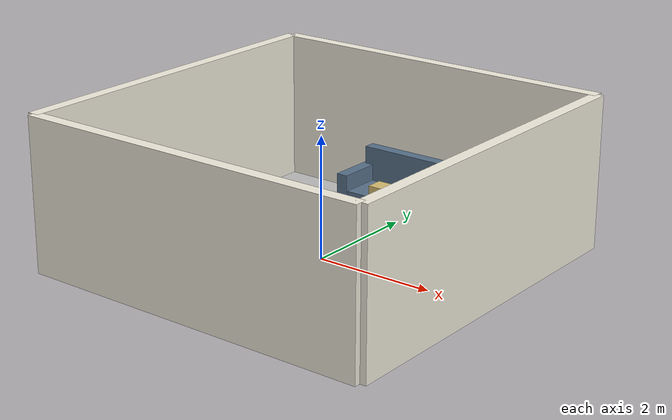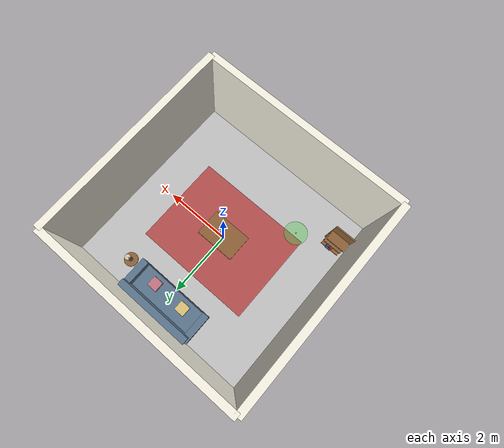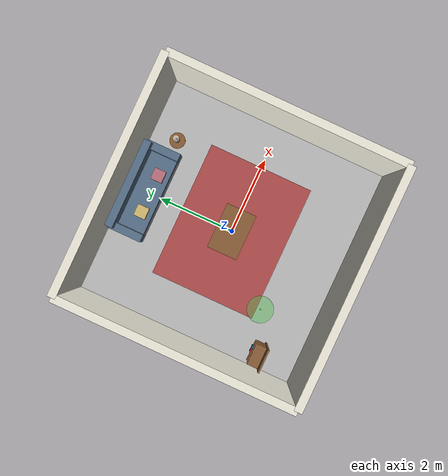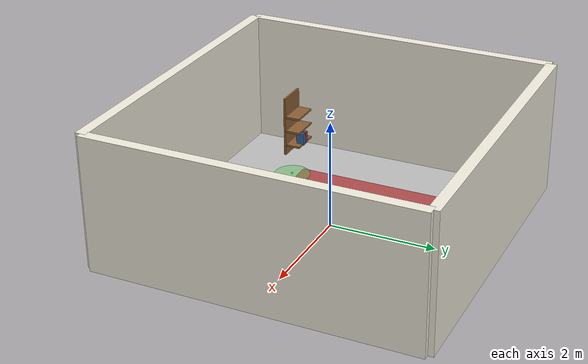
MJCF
<mujoco model="living_room_v2">
  <!-- 编译器选项 -->
  <compiler angle="degree" coordinate="local" inertiafromgeom="true" meshdir="../assets/meshes"/>

  <!-- 默认设置 -->
  <option timestep="0.004" gravity="0 0 -9.81">
    <!-- 优化求解器参数 -->
    <flag warmstart="enable"/>
  </option>

  <!-- 默认类定义 -->
  <default>
    <geom solref="0.01 1" solimp="0.95 0.95 0.001"/>
  </default>

  <!-- 资源定义 -->
  <asset>
    <!-- 地板棋盘格纹理 -->
    <texture name="floor_texture" type="2d" builtin="checker"
             rgb1="0.85 0.85 0.85" rgb2="0.65 0.65 0.65"
             width="512" height="512" mark="edge" markrgb="0.25 0.25 0.25"/>

    <!-- 墙壁纹理（带微妙花纹）-->
    <texture name="wall_texture" type="2d" builtin="flat"
             rgb1="0.96 0.94 0.88" width="512" height="512"/>

    <!-- 木纹纹理（桌子）-->
    <texture name="wood_texture" type="2d" builtin="gradient"
             rgb1="0.65 0.45 0.25" rgb2="0.45 0.30 0.18"
             width="512" height="512" mark="cross" markrgb="0.35 0.22 0.12"/>

    <!-- 布料纹理（沙发）-->
    <texture name="fabric_texture" type="2d" builtin="flat"
             rgb1="0.35 0.45 0.55" width="512" height="512"/>

    <!-- 陶瓷纹理（茶壶）-->
    <texture name="ceramic_texture" type="2d" builtin="gradient"
             rgb1="0.9 0.9 0.95" rgb2="0.8 0.8 0.88"
             width="256" height="256"/>

    <!-- 地毯纹理 -->
    <texture name="carpet_texture" type="2d" builtin="checker"
             rgb1="0.75 0.35 0.35" rgb2="0.65 0.25 0.25"
             width="256" height="256" mark="none"/>

    <!-- 材质定义 -->
    <material name="floor_mat" texture="floor_texture"
              specular="0.4" shininess="0.15" reflectance="0.12"/>

    <material name="wall_mat" texture="wall_texture"
              specular="0.15" shininess="0.08" reflectance="0.02"/>

    <material name="wood_mat" texture="wood_texture"
              specular="0.5" shininess="0.35" reflectance="0.08"/>

    <material name="fabric_mat" texture="fabric_texture"
              specular="0.1" shininess="0.02" reflectance="0.01"/>

    <material name="ceramic_mat" texture="ceramic_texture"
              specular="0.8" shininess="0.6" reflectance="0.15"/>

    <material name="carpet_mat" texture="carpet_texture"
              specular="0.05" shininess="0.01" reflectance="0"/>

    <!-- 茶壶网格 -->
    <mesh name="teapot_mesh" file="teapot_simple.obj" scale="1.0 1.0 1.0"/>
  </asset>

  <!-- 视觉效果设置 -->
  <visual>
    <global offwidth="1920" offheight="1080" elevation="-20" azimuth="135" fovy="50"/>
    <quality shadowsize="4096" offsamples="4"/>
    <map force="0.1" zfar="50" znear="0.05"/>
    <headlight ambient="0.4 0.4 0.4" diffuse="0.8 0.8 0.8" specular="0.4 0.4 0.4"/>
  </visual>

  <!-- 世界坐标系 -->
  <worldbody>
    <!-- 环境光照 - 优化光照系统 -->
    <!-- 主光源（天花板中央） -->
    <light name="ceiling_main" pos="0 0 2.8" dir="0 0 -1"
           directional="false" diffuse="0.9 0.9 0.85" specular="0.6 0.6 0.6"
           castshadow="false"/>

    <!-- 补光1（左前方） -->
    <light name="fill_light_1" pos="2 -2 2.5" dir="-0.4 0.4 -1"
           directional="false" diffuse="0.5 0.5 0.5" specular="0.3 0.3 0.3"
           castshadow="false"/>

    <!-- 补光2（右后方） -->
    <light name="fill_light_2" pos="-2 2 2.2" dir="0.5 -0.5 -1"
           directional="false" diffuse="0.4 0.4 0.45" specular="0.2 0.2 0.25"
           castshadow="false"/>

    <!-- 地板 (6m x 6m) - 优化摩擦参数 -->
    <geom name="floor" type="plane" size="3 3 0.1"
          material="floor_mat" condim="3" friction="1.0 0.5 0.01"
          solref="0.02 1" solimp="0.9 0.95 0.001"/>

    <!-- 墙壁 -->
    <geom name="wall_back" type="box" pos="0 3 1.25" size="3 0.1 1.25"
          material="wall_mat" contype="0" conaffinity="0"/>

    <geom name="wall_front" type="box" pos="0 -3 1.25" size="3 0.1 1.25"
          material="wall_mat" contype="0" conaffinity="0"/>

    <geom name="wall_left" type="box" pos="-3 0 1.25" size="0.1 3 1.25"
          material="wall_mat" contype="0" conaffinity="0"/>

    <geom name="wall_right" type="box" pos="3 0 1.25" size="0.1 3 1.25"
          material="wall_mat" contype="0" conaffinity="0"/>

    <!-- 客厅茶几 (房间中央) - 修正高度 -->
    <body name="coffee_table" pos="0 0 0.375">
      <!-- 桌面 -->
      <geom name="table_top" type="box" size="0.6 0.4 0.025"
            material="wood_mat" mass="12" friction="0.8 0.4 0.01"/>

      <!-- 桌腿 (四个) - 修正长度避免穿地 -->
      <geom name="leg_1" type="cylinder" pos="0.5 0.3 -0.2"
            size="0.03 0.175" rgba="0.35 0.25 0.15 1" mass="1.2"
            friction="1.0 0.5 0.01"/>
      <geom name="leg_2" type="cylinder" pos="0.5 -0.3 -0.2"
            size="0.03 0.175" rgba="0.35 0.25 0.15 1" mass="1.2"
            friction="1.0 0.5 0.01"/>
      <geom name="leg_3" type="cylinder" pos="-0.5 0.3 -0.2"
            size="0.03 0.175" rgba="0.35 0.25 0.15 1" mass="1.2"
            friction="1.0 0.5 0.01"/>
      <geom name="leg_4" type="cylinder" pos="-0.5 -0.3 -0.2"
            size="0.03 0.175" rgba="0.35 0.25 0.15 1" mass="1.2"
            friction="1.0 0.5 0.01"/>
    </body>

    <body name="teapot" pos="0.15 0 0.45">
      <freejoint/>
      <geom name="teapot_geom" type="mesh" mesh="teapot_mesh"
            material="ceramic_mat" mass="0.5"
            friction="0.6 0.3 0.005" solref="0.01 1"/>
    </body>

    <!-- 长沙发 (靠后墙) - 多组件设计 -->
    <body name="long_sofa" pos="0 2.4 0.08">
      <!-- 座椅底座 -->
      <geom name="sofa_base" type="box" size="1.2 0.45 0.08"
            rgba="0.25 0.25 0.30 1" mass="20"
            friction="1.2 0.6 0.01" solref="0.02 1"/>

      <!-- 座椅垫（柔软材质）-->
      <geom name="sofa_seat_cushion" type="box" pos="0 0 0.16" size="1.15 0.42 0.08"
            material="fabric_mat" mass="8"
            friction="1.5 0.8 0.02" solref="0.005 0.8" solimp="0.9 0.95 0.001"/>

      <!-- 靠背 -->
      <geom name="sofa_backrest" type="box" pos="0 0.38 0.45" size="1.15 0.1 0.37"
            material="fabric_mat" mass="12"
            friction="1.2 0.6 0.01" solref="0.01 1"/>

      <!-- 左扶手 -->
      <geom name="sofa_armrest_left" type="box" pos="-1.1 0 0.30" size="0.1 0.45 0.22"
            material="fabric_mat" mass="4"
            friction="1.2 0.6 0.01"/>

      <!-- 右扶手 -->
      <geom name="sofa_armrest_right" type="box" pos="1.1 0 0.30" size="0.1 0.45 0.22"
            material="fabric_mat" mass="4"
            friction="1.2 0.6 0.01"/>
    </body>

    <!-- 装饰枕头1 -->
    <body name="cushion_1" pos="-0.5 2.25 0.38">
      <freejoint/>
      <geom name="cushion_1_geom" type="box" size="0.15 0.15 0.08"
            rgba="0.85 0.75 0.45 1" mass="0.3"
            friction="1.0 0.5 0.01" solref="0.003 0.5"/>
    </body>

    <!-- 装饰枕头2 -->
    <body name="cushion_2" pos="0.5 2.25 0.38">
      <freejoint/>
      <geom name="cushion_2_geom" type="box" size="0.15 0.15 0.08"
            rgba="0.75 0.45 0.50 1" mass="0.3"
            friction="1.0 0.5 0.01" solref="0.003 0.5"/>
    </body>

    <!-- 地毯 (在茶几下方) - 优化纹理和物理 -->
    <geom name="carpet" type="box" pos="0 0 0.003" size="1.8 1.4 0.002"
          material="carpet_mat" friction="1.8 0.9 0.02"
          solref="0.005 0.5" solimp="0.95 0.98 0.001"/>

    <!-- 边几（沙发旁） -->
    <body name="side_table" pos="1.5 2.2 0.3">
      <geom name="side_table_top" type="cylinder" size="0.2 0.02"
            material="wood_mat" mass="3" friction="0.8 0.4 0.01"/>
      <geom name="side_table_leg" type="cylinder" pos="0 0 -0.28" size="0.025 0.28"
            rgba="0.35 0.25 0.15 1" mass="1" friction="1.0 0.5 0.01"/>

      <!-- 台灯（装饰）-->
      <body name="lamp" pos="0 0 0.05">
        <geom name="lamp_base" type="cylinder" size="0.06 0.015"
              rgba="0.2 0.2 0.2 1" mass="0.5"/>
        <geom name="lamp_pole" type="cylinder" pos="0 0 0.15" size="0.01 0.15"
              rgba="0.3 0.3 0.3 1" mass="0.2"/>
        <geom name="lamp_shade" type="cylinder" pos="0 0 0.35" size="0.08 0.05"
              rgba="0.95 0.9 0.85 0.8" mass="0.1" contype="0" conaffinity="0"/>
      </body>
    </body>

    <!-- 书架（靠墙）-->
    <body name="bookshelf" pos="-2.5 -2 0.6">
      <!-- 背板 -->
      <geom name="shelf_back" type="box" size="0.3 0.02 0.6"
            material="wood_mat" mass="8"/>
      <!-- 层板1 -->
      <geom name="shelf_1" type="box" pos="0 0.15 -0.4" size="0.28 0.15 0.02"
            material="wood_mat" mass="3"/>
      <!-- 层板2 -->
      <geom name="shelf_2" type="box" pos="0 0.15 -0.1" size="0.28 0.15 0.02"
            material="wood_mat" mass="3"/>
      <!-- 层板3 -->
      <geom name="shelf_3" type="box" pos="0 0.15 0.2" size="0.28 0.15 0.02"
            material="wood_mat" mass="3"/>

      <!-- 装饰书本 -->
      <geom name="book_1" type="box" pos="0 0.25 -0.28" size="0.04 0.08 0.12"
            rgba="0.6 0.2 0.2 1" mass="0.2"/>
      <geom name="book_2" type="box" pos="0.1 0.25 -0.28" size="0.04 0.08 0.12"
            rgba="0.2 0.4 0.6 1" mass="0.2"/>
    </body>

    <!-- 机器人放置区域标记 -->
    <body name="robot_spawn_point" pos="-1.5 -1.5 0.01">
      <geom name="spawn_platform" type="cylinder" size="0.35 0.01"
            rgba="0.3 0.8 0.3 0.4" contype="0" conaffinity="0"/>
      <site name="robot_spawn_site" pos="0 0 0.02" size="0.02" rgba="0 1 0 0.6"/>
    </body>

    <!-- 相机目标点（用于优化视角）-->
    <camera name="main_view" pos="3.5 -3.5 2.8" xyaxes="0.707 0.707 0 -0.408 0.408 0.816" fovy="50"/>
    <camera name="top_view" pos="0 0 5" xyaxes="1 0 0 0 1 0" fovy="60"/>
    <camera name="sofa_view" pos="2 -1 1.5" xyaxes="0.8 0.6 0 -0.36 0.48 0.8" fovy="55"/>
  </worldbody>

  <!-- 执行器配置（预留给机器人模型） -->
  <actuator>
    <!-- 机器人执行器将在此处定义 -->
  </actuator>
</mujoco>
